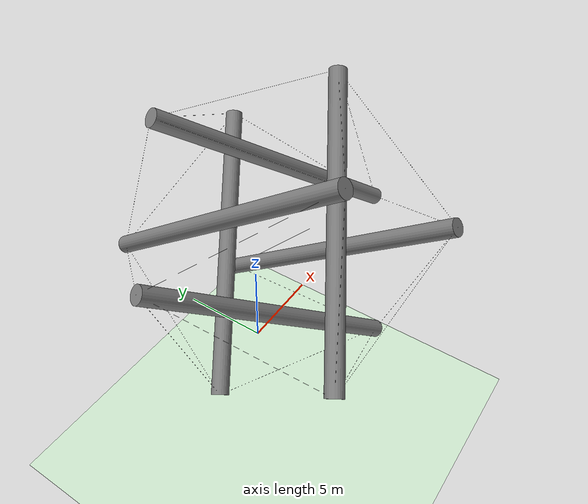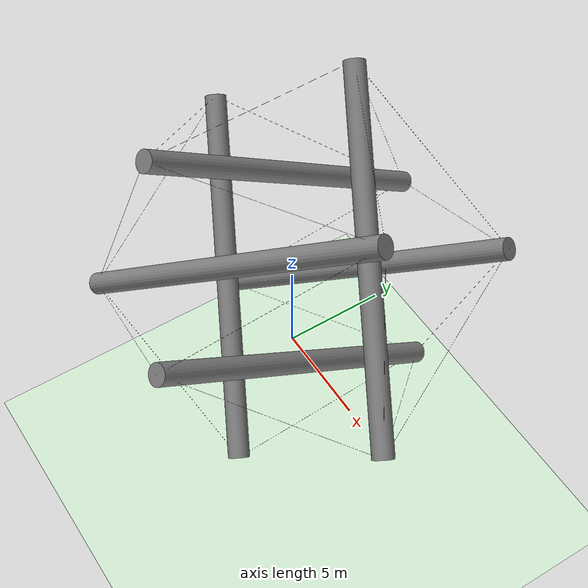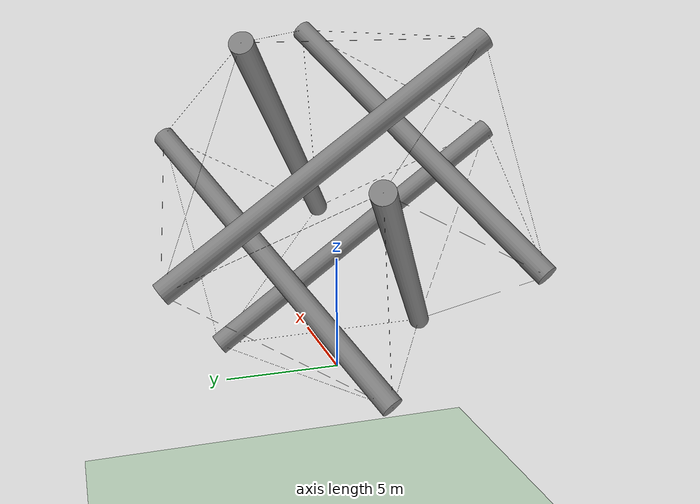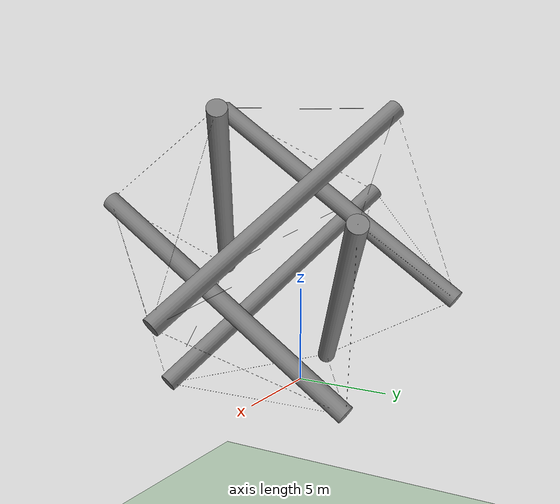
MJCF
<!--
  ~ Copyright (c) 2020.  -  present.  Kun Wang. All Rights Reserved.
  -->

<mujoco model="TT (v1.31)">
    <compiler angle="degree" coordinate="global" inertiafromgeom="true">
    </compiler>

    <option timestep="0.001"
            gravity="0 0 -98.1"
            cone="elliptic"
            solver="Newton"
            integrator="Euler"
            iterations="100">
         <flag sensornoise="disable"
              warmstart="enable"
            frictionloss="disable"/>
    </option>

    <visual>
        <global offwidth="1024" offheight="768"/>
    </visual>

    <default class='tt'>
        <geom conaffinity="1" condim="6" contype="1" material="geom" rgba="1 .84 0 1" size="0.1"
              solref="0.1 1.0"
              density="1000" friction="1.000 1.00 1.000" />
        <site type="sphere" size="0.005"/>
        <tendon width="0.01" rgba="1 0 0 1" damping="1000" stiffness="10000"/>
        <general ctrlrange="-100 100" dyntype="filter"  gainprm="1000 0 0" biastype="none" dynprm="1 0 0" biasprm="0 0 0"/>
    </default>

    <asset>
        <texture name='a' builtin="gradient" height="100" rgb1="1 1 1" rgb2="0 0 0" type="skybox"
                 width="100"/>
        <texture builtin="flat" height="1278" mark="cross" markrgb="1 1 1" name="texgeom"
                 random="0.01" rgb1="0.8 0.6 0.4" rgb2="0.8 0.6 0.4" type="cube" width="127"/>
        <texture builtin="checker" height="100" name="texplane" rgb1="0 0 0" rgb2="0.8 0.8 0.8"
                 type="2d" width="100"/>
        <material name="MatPlane" reflectance="0.5" shininess="1" specular="1" texrepeat="30 30"
                  texture="texplane"/>
        <material name="geom" texture="texgeom" texuniform="true"/>
    </asset>

    <worldbody>

        <light name='mylight' cutoff="100" diffuse="1 1 1" dir="-0 0 -1.3" directional="true" exponent="1"
               pos="0 0 1.3" specular=".1 .1 .1"/>
        <geom conaffinity="1" condim="1" material="MatPlane" name="floor" pos="0 0 -10"
              rgba="0.8 0.9 0.8 1" size="400 400 0.1" type="plane"/>

        <camera name="camera" pos="0 -50 10" axisangle="1 0 0 90"/>

        <!-- ======= RODS ======= -->
        <body name="r01">
            <geom name="r01"
                  fromto=" 4.50711455 -9.14270959  9.69110459  3.95804993 4.64950745 0.04440166"
                  type="cylinder"
                  size="0.5"
                  mass="10"/>
            <freejoint name="move0_1"/>

            <site name="s0" pos=" 4.50711455 -9.14270959  9.69110459" rgba="0 0 0 1" size="0.01"/>
            <site name="s1" pos="3.95804993 4.64950745 0.04440166" rgba="0 0 0 1" size="0.01"/>
        </body>

        <body name="r23">
            <geom name="r23"
                  fromto="-4.79183289 -0.87960362  0.04440133  6.87804206 6.49201368 9.69110425"
                  type="cylinder"
                  size="0.5"
                  mass="10"/>
            <freejoint name="move2_3"/>

            <site name="s2" pos="-4.79183289 -0.87960362  0.04440133" rgba="0 0 0 1" size="0.01"/>
            <site name="s3" pos="6.87804206 6.49201368 9.69110425" rgba="0 0 0 1" size="0.01"/>
        </body>

        <body name="r45">
            <geom name="r45"
                  fromto=" 4.37145737 -5.69266941  0.04440201  -7.84748693  0.72793401  9.69110363"
                  type="cylinder"
                  size="0.5"
                  mass="10"/>
            <freejoint name="move4_5"/>

            <site name="s4" pos=" 4.37145737 -5.69266941  0.04440201" rgba="0 0 0 1" size="0.01"/>
            <site name="s5" pos="-7.84748693  0.72793401  9.69110363" rgba="0 0 0 1" size="0.01"/>
        </body>

        <body name="r67">
            <geom name="r67"
                  fromto="-2.14797444  7.85710112  4.86269575   -1.60039838 -5.92764414 14.52015705"
                  type="cylinder"
                  size="0.5"
                  mass="10"/>

            <site name="s6" pos="-2.14797444  7.85710112  4.86269575" rgba="0 0 0 1" size="0.01"/>
            <site name="s7" pos="-1.60039838 -5.92764414 14.52015705" rgba="0 0 0 1" size="0.01"/>
        </body>

        <body name="r89">
            <geom name="r89"
                  fromto="-4.51667933 -7.77137222  4.86269614    7.14746927 -0.40478    14.52015733"
                  type="cylinder"
                  size="0.5"
                  mass="10"/>
            <freejoint name="move8_9"/>

            <site name="s8" pos="-4.51667933 -7.77137222  4.86269614" rgba="0 0 0 1" size="0.01"/>
            <site name="s9" pos=" 7.14746927 -0.40478    14.52015733" rgba="0 0 0 1" size="0.01"/>
        </body>

        <body name="r1011">
            <geom name="r1011"
                  fromto="10.20232581 -2.00849264  4.86269674   -2.00940351  4.40966401 14.52015669"
                  type="cylinder"
                  size="0.5"
                  mass="10"/>
            <freejoint name="move10_11"/>

            <site name="s10" pos="10.20232581 -2.00849264  4.86269674" rgba="0 0 0 1" size="0.01"/>
            <site name="s11" pos="-2.00940351  4.40966401 14.52015669" rgba="0 0 0 1" size="0.01"/>
        </body>
    </worldbody>

    <!-- TENDONS -->

    <sensor>
        <framepos name="pos_s0" objname="s0" objtype="site"/>
        <framelinvel name="linvel_s0" objname="s0" objtype="site"/>
        <framelinacc name="linacc_s0" objname="s0" objtype="site"/>
        <framepos name="pos_s1" objname="s1" objtype="site"/>
        <framelinvel name="linvel_s1" objname="s1" objtype="site"/>
        <framelinacc name="linacc_s1" objname="s1" objtype="site"/>
        <framepos name="pos_s2" objname="s2" objtype="site"/>
        <framelinvel name="linvel_s2" objname="s2" objtype="site"/>
        <framelinacc name="linacc_s2" objname="s2" objtype="site"/>
        <framepos name="pos_s3" objname="s3" objtype="site"/>
        <framelinvel name="linvel_s3" objname="s3" objtype="site"/>
        <framelinacc name="linacc_s3" objname="s3" objtype="site"/>
        <framepos name="pos_s4" objname="s4" objtype="site"/>
        <framelinvel name="linvel_s4" objname="s4" objtype="site"/>
        <framelinacc name="linacc_s4" objname="s4" objtype="site"/>
        <framepos name="pos_s5" objname="s5" objtype="site"/>
        <framelinvel name="linvel_s5" objname="s5" objtype="site"/>
        <framelinacc name="linacc_s5" objname="s5" objtype="site"/>
        <framepos name="pos_s6" objname="s6" objtype="site"/>
        <framelinvel name="linvel_s6" objname="s6" objtype="site"/>
        <framelinacc name="linacc_s6" objname="s6" objtype="site"/>
        <framepos name="pos_s7" objname="s7" objtype="site"/>
        <framelinvel name="linvel_s7" objname="s7" objtype="site"/>
        <framelinacc name="linacc_s7" objname="s7" objtype="site"/>
        <framepos name="pos_s8" objname="s8" objtype="site"/>
        <framelinvel name="linvel_s8" objname="s8" objtype="site"/>
        <framelinacc name="linacc_s8" objname="s8" objtype="site"/>
        <framepos name="pos_s9" objname="s9" objtype="site"/>
        <framelinvel name="linvel_s9" objname="s9" objtype="site"/>
        <framelinacc name="linacc_s9" objname="s9" objtype="site"/>
        <framepos name="pos_s10" objname="s10" objtype="site"/>
        <framelinvel name="linvel_s10" objname="s10" objtype="site"/>
        <framelinacc name="linacc_s10" objname="s10" objtype="site"/>
        <framepos name="pos_s11" objname="s11" objtype="site"/>
        <framelinvel name="linvel_s11" objname="s11" objtype="site"/>
        <framelinacc name="linacc_s11" objname="s11" objtype="site"/>

        <framelinacc name="linacc_r01" objname="r01" objtype="body"/>
        <frameangacc name="angacc_r01" objname="r01" objtype="body"/>
        <framepos name="pos_r01" objname="r01" objtype="body"/>
        <framelinvel name="linvel_r01" objname="r01" objtype="body"/>
        <frameangvel name="angvel_r01" objname="r01" objtype="body"/>
        <framequat name="quat_r01" objname="r01" objtype="body"/>

        <framelinacc name="linacc_r23" objname="r23" objtype="body"/>
        <frameangacc name="angacc_r23" objname="r23" objtype="body"/>
        <framepos name="pos_r23" objname="r23" objtype="body"/>
        <framelinvel name="linvel_r23" objname="r23" objtype="body"/>
        <frameangvel name="angvel_r23" objname="r23" objtype="body"/>
        <framequat name="quat_r23" objname="r23" objtype="body"/>

        <framelinacc name="linacc_r45" objname="r45" objtype="body"/>
        <frameangacc name="angacc_r45" objname="r45" objtype="body"/>
        <framepos name="pos_r45" objname="r45" objtype="body"/>
        <framelinvel name="linvel_r45" objname="r45" objtype="body"/>
        <frameangvel name="angvel_r45" objname="r45" objtype="body"/>
        <framequat name="quat_r45" objname="r45" objtype="body"/>

        <framelinacc name="linacc_r67" objname="r67" objtype="body"/>
        <frameangacc name="angacc_r67" objname="r67" objtype="body"/>
        <framepos name="pos_r67" objname="r67" objtype="body"/>
        <framelinvel name="linvel_r67" objname="r67" objtype="body"/>
        <frameangvel name="angvel_r67" objname="r67" objtype="body"/>
        <framequat name="quat_r67" objname="r67" objtype="body"/>

        <framelinacc name="linacc_r89" objname="r89" objtype="body"/>
        <frameangacc name="angacc_r89" objname="r89" objtype="body"/>
        <framepos name="pos_r89" objname="r89" objtype="body"/>
        <framelinvel name="linvel_r89" objname="r89" objtype="body"/>
        <frameangvel name="angvel_r89" objname="r89" objtype="body"/>
        <framequat name="quat_r89" objname="r89" objtype="body"/>

        <framelinacc name="linacc_r1011" objname="r1011" objtype="body"/>
        <frameangacc name="angacc_r1011" objname="r1011" objtype="body"/>
        <framepos name="pos_r1011" objname="r1011" objtype="body"/>
        <framelinvel name="linvel_r1011" objname="r1011" objtype="body"/>
        <frameangvel name="angvel_r1011" objname="r1011" objtype="body"/>
        <framequat name="quat_r1011" objname="r1011" objtype="body"/>
    </sensor>

    <tendon>
        <spatial name="td_0"  springlength="9.5">
            <site site="s0"/>
            <site site="s10"/>
        </spatial>
        <spatial name="td_1"  springlength="9.5">
            <site site="s1"/>
            <site site="s4"/>
        </spatial>
        <spatial name="td_2"  springlength="9.5">
            <site site="s2"/>
            <site site="s6"/>
        </spatial>
        <spatial name="td_3"  springlength="9.5">
            <site site="s3"/>
            <site site="s1"/>
        </spatial>
        <spatial name="td_4"  springlength="9.5">
            <site site="s4"/>
            <site site="s8"/>
        </spatial>
        <spatial name="td_5"  springlength="9.5">
            <site site="s5"/>
            <site site="s2"/>
        </spatial>
        <spatial name="td_6"  springlength="9.5">
            <site site="s6"/>
            <site site="s5"/>
        </spatial>
        <spatial name="td_7"  springlength="9.5">
            <site site="s7"/>
            <site site="s11"/>
        </spatial>
        <spatial name="td_8"  springlength="9.5">
            <site site="s8"/>
            <site site="s7"/>
        </spatial>
        <spatial name="td_9"  springlength="9.5">
            <site site="s9"/>
            <site site="s0"/>
        </spatial>
        <spatial name="td_10"  springlength="9.5">
            <site site="s10"/>
            <site site="s9"/>
        </spatial>
        <spatial name="td_11"  springlength="9.5">
            <site site="s11"/>
            <site site="s3"/>
        </spatial>
        <spatial name="td_12"  springlength="9.5">
            <site site="s0"/>
            <site site="s8"/>
        </spatial>
        <spatial name="td_13"  springlength="9.5">
            <site site="s0"/>
            <site site="s4"/>
        </spatial>
        <spatial name="td_14"  springlength="9.5">
            <site site="s10"/>
            <site site="s1"/>
        </spatial>
        <spatial name="td_15"  springlength="9.5">
            <site site="s10"/>
            <site site="s3"/>
        </spatial>
        <spatial name="td_16"  springlength="9.5">
            <site site="s9"/>
            <site site="s11"/>
        </spatial>
        <spatial name="td_17"  springlength="9.5">
            <site site="s9"/>
            <site site="s7"/>
        </spatial>
        <spatial name="td_18"  springlength="9.5">
            <site site="s2"/>
            <site site="s4"/>
        </spatial>
        <spatial name="td_19"  springlength="9.5">
            <site site="s2"/>
            <site site="s1"/>
        </spatial>
        <spatial name="td_20"  springlength="9.5">
            <site site="s6"/>
            <site site="s3"/>
        </spatial>
        <spatial name="td_21"  springlength="9.5">
            <site site="s6"/>
            <site site="s11"/>
        </spatial>
        <spatial name="td_22"  springlength="9.5">
            <site site="s5"/>
            <site site="s7"/>
        </spatial>
        <spatial name="td_23"  springlength="9.5">
            <site site="s5"/>
            <site site="s8"/>
        </spatial>
    </tendon>

    <!-- ACTUATION -->

    <actuator>
        <general name='act_0' tendon="td_0"/>
        <general name='act_1' tendon="td_1"/>
        <general name='act_2' tendon="td_2"/>
        <general name='act_3' tendon="td_3"/>
        <general name='act_4' tendon="td_4"/>
        <general name='act_5' tendon="td_5"/>
        <general name='act_6' tendon="td_6"/>
        <general name='act_7' tendon="td_7"/>
        <general name='act_8' tendon="td_8"/>
        <general name='act_9' tendon="td_9"/>
        <general name='act_10' tendon="td_10"/>
        <general name='act_11' tendon="td_11"/>
        <general name='act_12' tendon="td_12"/>
        <general name='act_13' tendon="td_13"/>
        <general name='act_14' tendon="td_14"/>
        <general name='act_15' tendon="td_15"/>
        <general name='act_16' tendon="td_16"/>
        <general name='act_17' tendon="td_17"/>
        <general name='act_18' tendon="td_18"/>
        <general name='act_19' tendon="td_19"/>
        <general name='act_20' tendon="td_20"/>
        <general name='act_21' tendon="td_21"/>
        <general name='act_22' tendon="td_22"/>
        <general name='act_23' tendon="td_23"/>
    </actuator>

    <sensor>
        <actuatorpos name="td_position_td_0" actuator="act_0"/>
        <actuatorpos name="td_position_td_1" actuator="act_1"/>
        <actuatorpos name="td_position_td_2" actuator="act_2"/>
        <actuatorpos name="td_position_td_3" actuator="act_3"/>
        <actuatorpos name="td_position_td_4" actuator="act_4"/>
        <actuatorpos name="td_position_td_5" actuator="act_5"/>
        <actuatorpos name="td_position_td_6" actuator="act_6"/>
        <actuatorpos name="td_position_td_7" actuator="act_7"/>
        <actuatorpos name="td_position_td_8" actuator="act_8"/>
        <actuatorpos name="td_position_td_9" actuator="act_9"/>
        <actuatorpos name="td_position_td_10" actuator="act_10"/>
        <actuatorpos name="td_position_td_11" actuator="act_11"/>
        <actuatorpos name="td_position_td_12" actuator="act_12"/>
        <actuatorpos name="td_position_td_13" actuator="act_13"/>
        <actuatorpos name="td_position_td_14" actuator="act_14"/>
        <actuatorpos name="td_position_td_15" actuator="act_15"/>
        <actuatorpos name="td_position_td_16" actuator="act_16"/>
        <actuatorpos name="td_position_td_17" actuator="act_17"/>
        <actuatorpos name="td_position_td_18" actuator="act_18"/>
        <actuatorpos name="td_position_td_19" actuator="act_19"/>
        <actuatorpos name="td_position_td_20" actuator="act_20"/>
        <actuatorpos name="td_position_td_21" actuator="act_21"/>
        <actuatorpos name="td_position_td_22" actuator="act_22"/>
        <actuatorpos name="td_position_td_23" actuator="act_23"/>
    </sensor>

</mujoco>
